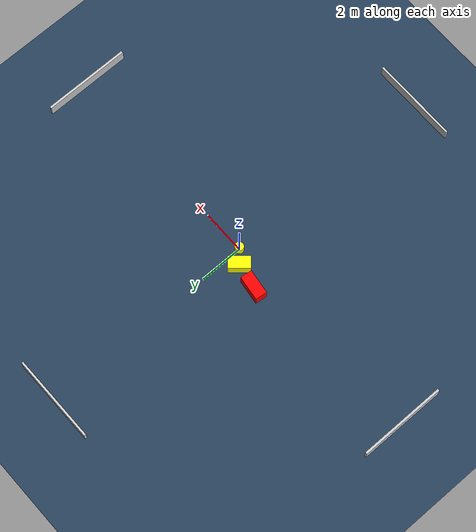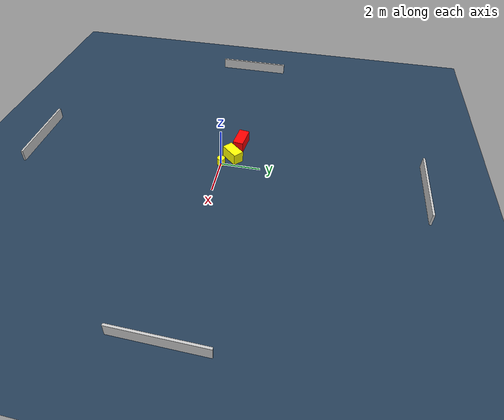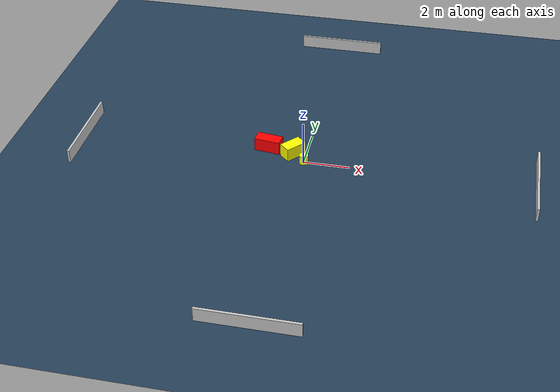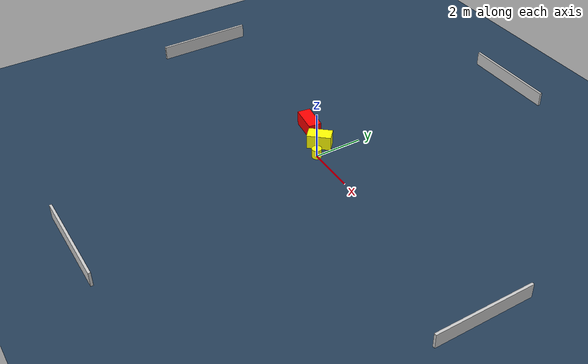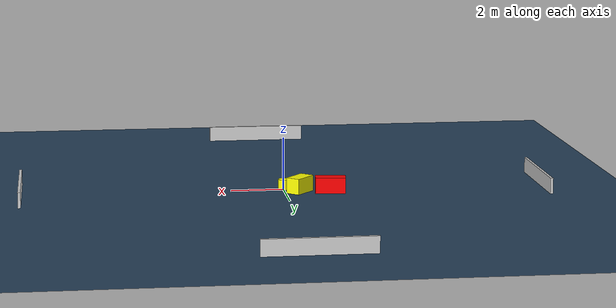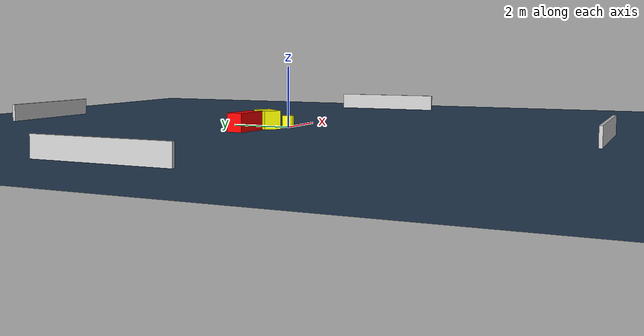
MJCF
<?xml version="1.0" ?>
<mujoco model="generated_environment">
  <option timestep="0.01" integrator="RK4" cone="elliptic"/>
  <default>
    <geom density="1"/>
  </default>
  <asset>
    <texture builtin="gradient" height="3072" name="skybox" rgb1="0.3 0.5 0.7" rgb2="0 0 0" type="skybox" width="512"/>
    <texture builtin="checker" height="300" name="groundplane" rgb1="0.2 0.3 0.4" rgb2="0.1 0.2 0.3" type="2d" width="300"/>
    <material name="groundplane" reflectance="0.2" texrepeat="5 5" texture="groundplane"/>
  </asset>
  <worldbody>
    <light dir="0 0 -1" directional="true" pos="0 0 1.5"/>
    <geom condim="3" friction="0.5 0.005 0.001" material="groundplane" name="floor" pos="0 0 0" size="0 0 0.05" type="plane"/>
    <body name="walls">
      <geom name="wall_1" condim="4" pos="-10.0 0.0 0.3" rgba="0.800000011920929 0.800000011920929 0.800000011920929 1.0" size="0.05 2.0 0.3" type="box"/>
      <geom name="wall_2" condim="4" pos="10.0 0.0 0.3" rgba="0.800000011920929 0.800000011920929 0.800000011920929 1.0" size="0.05 2.0 0.3" type="box"/>
      <geom name="wall_3" condim="4" pos="0.0 -10.0 0.3" rgba="0.800000011920929 0.800000011920929 0.800000011920929 1.0" size="2.0 0.05 0.3" type="box"/>
      <geom name="wall_4" condim="4" pos="0.0 10.0 0.3" rgba="0.800000011920929 0.800000011920929 0.800000011920929 1.0" size="2.0 0.05 0.3" type="box"/>
    </body>
    <body name="robot">
      <joint name="joint_x" type="slide" pos="0 0 0" axis="1 0 0"/>
      <joint name="joint_y" type="slide" pos="0 0 0" axis="0 1 0"/>
      <geom name="robot" type="cylinder" pos="0.0 0.0 0.2" size="0.2 0.2 0.0" mass="5.0" friction="1.0 0.005 0.0001" condim="4" rgba="1.0 1.0 0.0 1.0"/>
    </body>
    <body name="obstacle_1_movable">
      <geom name="obstacle_1_movable" condim="4" pos="-0.5708855612667835 0.4968023083394201 0.3" euler="0 0 228.3360257959158" friction="0.0 0.005 0.001" rgba="1.0 1.0 0.0 1.0" size="0.4892989781811903 0.27537622664084077 0.3" type="box" mass="0.1"/>
      <joint type="free"/>
    </body>
    <body name="obstacle_2_static">
      <geom name="obstacle_2_static" condim="4" pos="-1.7096373292233318 0.7099691357560851 0.3" euler="0 0 352.6120674856492" friction="0.0 0.005 0.001" rgba="1.0 0.0 0.0 1.0" size="0.5735835992930041 0.2702784012091678 0.3" type="box"/>
    </body>
  </worldbody>
  <actuator>
    <motor name="actuator_x" joint="joint_x" gear="1" ctrlrange="-1 1"/>
    <motor name="actuator_y" joint="joint_y" gear="1" ctrlrange="-1 1"/>
  </actuator>
</mujoco>
